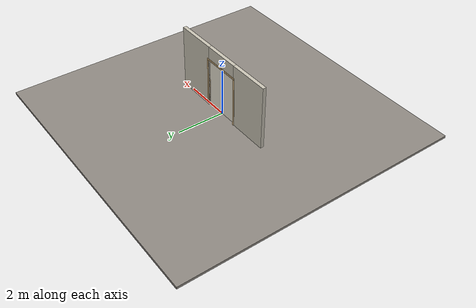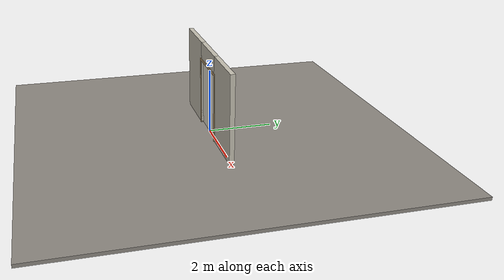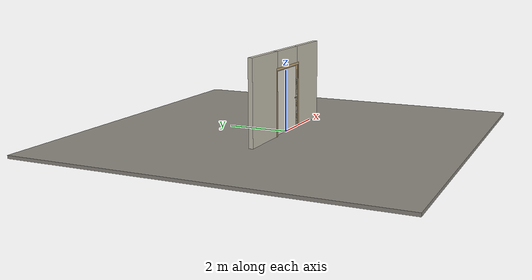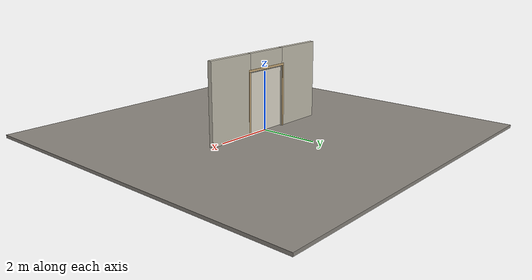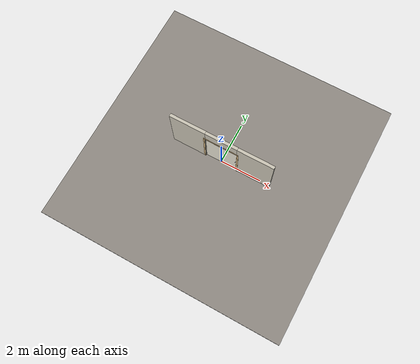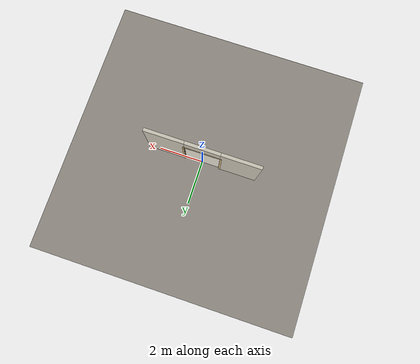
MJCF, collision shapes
<?xml version="1.0" ?>
<mujoco model="db0683_bifold_full">
  <compiler angle="radian" meshdir="../../hardware" texturedir="../../textures" autolimits="true" inertiafromgeom="false"/>
  <option timestep="0.002" integrator="implicitfast" cone="elliptic" impratio="10" noslip_iterations="3">
    <flag multiccd="enable"/>
  </option>
  <size memory="16M"/>
  <default>
    <geom condim="4" solref="0.005 1" solimp="0.95 0.99 0.001"/>
    <joint solreflimit="0.005 1" solimplimit="0.95 0.99 0.001"/>
    <tendon solreflimit="0.005 1"/>
    <equality solref="0.002 1"/>
  </default>
  <visual>
    <headlight ambient="0.4 0.4 0.4" diffuse="0.7 0.7 0.7" specular="0.2 0.2 0.2"/>
    <quality shadowsize="4096"/>
    <map znear="0.01" zfar="60"/>
  </visual>
  <asset>
    <mesh name="knob_13f7a2a65f" file="knob_13f7a2a65f.obj"/>
    <material name="mat_floor" rgba="0.55 0.53 0.5 1" specular="0.2" shininess="0.15" reflectance="0"/>
    <material name="mat_wall" rgba="0.78 0.76 0.7 1" specular="0.2" shininess="0.1" reflectance="0"/>
    <material name="mat_frame" rgba="0.82 0.7 0.5 1" specular="0.2" shininess="0.45" reflectance="0"/>
    <material name="mat_track" rgba="0.8 0.81 0.83 1" specular="0.8" shininess="0.6" reflectance="0.4"/>
    <material name="mat_hinge" rgba="0.65 0.66 0.68 1" specular="0.74" shininess="0.5" reflectance="0.36"/>
    <material name="mat_panel_0_0" rgba="0.9 0.88 0.82 1" specular="0.2" shininess="0.55" reflectance="0"/>
    <material name="mat_panel_0_0_louver" rgba="0.765 0.748 0.697 1" specular="0.2" shininess="0.4" reflectance="0"/>
    <material name="mat_panel_0_1" rgba="0.9 0.88 0.82 1" specular="0.2" shininess="0.55" reflectance="0"/>
    <material name="mat_panel_0_1_louver" rgba="0.765 0.748 0.697 1" specular="0.2" shininess="0.4" reflectance="0"/>
    <material name="mat_op_nickel_satin" rgba="0.72 0.7 0.66 1" specular="0.8" shininess="0.65" reflectance="0.4"/>
    <texture name="skybox" type="skybox" builtin="gradient" rgb1="0.6 0.7 0.85" rgb2="0.9 0.92 0.95" width="256" height="256"/>
  </asset>
  <worldbody>
    <light name="sun" pos="1.5 -2.5 4" dir="-0.3 0.5 -0.8" directional="true" diffuse="0.8 0.8 0.8" specular="0.3 0.3 0.3" castshadow="true"/>
    <light name="fill" pos="-1.5 2.5 3" dir="0.3 -0.5 -0.7" directional="true" diffuse="0.35 0.35 0.4" castshadow="false"/>
    <camera name="robot_view" pos="0 -2.581563 1.766338" xyaxes="1 0 0 0 0.26963 0.962964" fovy="52"/>
    <camera name="far_view" pos="0 2.581563 1.766338" xyaxes="-1 0 0 0 -0.26963 0.962964" fovy="52"/>
    <camera name="iso" pos="1.961988 -2.168513 2.179388" xyaxes="0.741536 0.670913 0 -0.242917 0.268487 0.932151" fovy="46"/>
    <camera name="detail_handle" pos="0.8935 -0.8475 1.28" xyaxes="0.97561 0.219512 0 -0.070934 0.315262 0.94635" fovy="38"/>
    <geom name="floor" type="box" size="6 6 0.05" pos="0 0 -0.05" material="mat_floor" group="0" contype="1" conaffinity="1" friction="0.8 0.005 0.0001" density="2400"/>
    <geom name="wall_left" type="box" size="0.86525 0.0725 1.35" pos="-1.63475 0 1.35" material="mat_wall" group="0" contype="1" conaffinity="1" friction="0.6 0.005 0.0001" density="800"/>
    <geom name="wall_right" type="box" size="0.86525 0.0725 1.35" pos="1.63475 0 1.35" material="mat_wall" group="0" contype="1" conaffinity="1" friction="0.6 0.005 0.0001" density="800"/>
    <geom name="wall_header" type="box" size="0.7695 0.0725 0.3065" pos="0 0 2.3935" material="mat_wall" group="0" contype="1" conaffinity="1" friction="0.6 0.005 0.0001" density="800"/>
    <geom name="jamb_hinge" type="box" size="0.0095 0.0725 1.0435" pos="-0.779 0 1.0435" material="mat_frame" group="0" contype="1" conaffinity="1" friction="0.6 0.005 0.0001" density="400"/>
    <geom name="jamb_strike" type="box" size="0.0095 0.0725 1.0435" pos="0.779 0 1.0435" material="mat_frame" group="0" contype="1" conaffinity="1" friction="0.6 0.005 0.0001" density="400"/>
    <geom name="stud_strike" type="box" size="0.015 0.0725 1.0435" pos="0.8035 0 1.0435" material="mat_wall" group="0" contype="1" conaffinity="1" friction="0.6 0.005 0.0001" density="500"/>
    <geom name="jamb_head" type="box" size="0.8035 0.0725 0.0095" pos="0.015 0 2.0965" material="mat_frame" group="0" contype="1" conaffinity="1" friction="0.6 0.005 0.0001" density="400"/>
    <geom name="head_stud" type="box" size="0.8035 0.0725 0.015" pos="0.015 0 2.121" material="mat_wall" group="0" contype="1" conaffinity="1" friction="0.6 0.005 0.0001" density="500"/>
    <geom name="casing_l_n" type="box" size="0.035 0.008 1.053" pos="-0.8185 -0.0805 1.0435" material="mat_frame" group="2" contype="0" conaffinity="0" density="400"/>
    <geom name="casing_r_n" type="box" size="0.035 0.008 1.053" pos="0.8185 -0.0805 1.0435" material="mat_frame" group="2" contype="0" conaffinity="0" density="400"/>
    <geom name="casing_h_n" type="box" size="0.8535 0.008 0.035" pos="0 -0.0805 2.136" material="mat_frame" group="2" contype="0" conaffinity="0" density="400"/>
    <geom name="casing_l_p" type="box" size="0.035 0.008 1.053" pos="-0.8185 0.0805 1.0435" material="mat_frame" group="2" contype="0" conaffinity="0" density="400"/>
    <geom name="casing_r_p" type="box" size="0.035 0.008 1.053" pos="0.8185 0.0805 1.0435" material="mat_frame" group="2" contype="0" conaffinity="0" density="400"/>
    <geom name="casing_h_p" type="box" size="0.8535 0.008 0.035" pos="0 0.0805 2.136" material="mat_frame" group="2" contype="0" conaffinity="0" density="400"/>
    <geom name="fold_track" type="box" size="0.7695 0.02 0.015" pos="0 0 2.072" material="mat_track" group="1" contype="0" conaffinity="0" density="2700"/>
    <site name="approach_point" pos="0 -1.5 0" quat="1 0 0 0" size="0.05" rgba="0.2 0.9 0.2 0.5" group="4"/>
    <site name="goal_point" pos="0 1.5 0" quat="1 0 0 0" size="0.05" rgba="0.2 0.9 0.2 0.5" group="4"/>
    <site name="door_plane_center" pos="0 0 1.0435" quat="1 0 0 0" size="0.02" rgba="0.2 0.9 0.2 0.5" group="4"/>
    <body name="panel_0_0" pos="-0.7695 0 0">
      <inertial pos="0.383386 0 1.038838" mass="11.876612" quat="0.500821 0.500821 0.499178 -0.499178" diaginertia="0.562183094 4.110008557 4.669772712"/>
      <joint name="panel_0_0_hinge" type="hinge" axis="0 0 -1" pos="0.035 0 0" limited="true" range="0 1.48353" damping="0.840751" frictionloss="11.149303" armature="0.02"/>
      <geom name="panel_0_0_slab" type="box" size="0.375645 0.0175 1.016" pos="0.384355 0 1.036" material="mat_panel_0_0" group="0" contype="1" conaffinity="1" friction="0.35 0.005 0.0001" density="1"/>
      <geom name="panel_0_0_louver_0" type="box" size="0.285645 0.002 0.026356" pos="0.384355 0 0.268621" quat="0.953717 0.300706 0 0" material="mat_panel_0_0_louver" group="1" contype="0" conaffinity="0" density="1"/>
      <geom name="panel_0_0_louver_1" type="box" size="0.285645 0.002 0.026356" pos="0.384355 0 0.318824" quat="0.953717 0.300706 0 0" material="mat_panel_0_0_louver" group="1" contype="0" conaffinity="0" density="1"/>
      <geom name="panel_0_0_louver_2" type="box" size="0.285645 0.002 0.026356" pos="0.384355 0 0.369026" quat="0.953717 0.300706 0 0" material="mat_panel_0_0_louver" group="1" contype="0" conaffinity="0" density="1"/>
      <geom name="panel_0_0_louver_3" type="box" size="0.285645 0.002 0.026356" pos="0.384355 0 0.419228" quat="0.953717 0.300706 0 0" material="mat_panel_0_0_louver" group="1" contype="0" conaffinity="0" density="1"/>
      <geom name="panel_0_0_louver_4" type="box" size="0.285645 0.002 0.026356" pos="0.384355 0 0.469431" quat="0.953717 0.300706 0 0" material="mat_panel_0_0_louver" group="1" contype="0" conaffinity="0" density="1"/>
      <geom name="panel_0_0_louver_5" type="box" size="0.285645 0.002 0.026356" pos="0.384355 0 0.519633" quat="0.953717 0.300706 0 0" material="mat_panel_0_0_louver" group="1" contype="0" conaffinity="0" density="1"/>
      <geom name="panel_0_0_louver_6" type="box" size="0.285645 0.002 0.026356" pos="0.384355 0 0.569835" quat="0.953717 0.300706 0 0" material="mat_panel_0_0_louver" group="1" contype="0" conaffinity="0" density="1"/>
      <geom name="panel_0_0_louver_7" type="box" size="0.285645 0.002 0.026356" pos="0.384355 0 0.620038" quat="0.953717 0.300706 0 0" material="mat_panel_0_0_louver" group="1" contype="0" conaffinity="0" density="1"/>
      <geom name="panel_0_0_louver_8" type="box" size="0.285645 0.002 0.026356" pos="0.384355 0 0.67024" quat="0.953717 0.300706 0 0" material="mat_panel_0_0_louver" group="1" contype="0" conaffinity="0" density="1"/>
      <geom name="panel_0_0_louver_9" type="box" size="0.285645 0.002 0.026356" pos="0.384355 0 0.720442" quat="0.953717 0.300706 0 0" material="mat_panel_0_0_louver" group="1" contype="0" conaffinity="0" density="1"/>
      <geom name="panel_0_0_louver_10" type="box" size="0.285645 0.002 0.026356" pos="0.384355 0 0.770645" quat="0.953717 0.300706 0 0" material="mat_panel_0_0_louver" group="1" contype="0" conaffinity="0" density="1"/>
      <geom name="panel_0_0_louver_11" type="box" size="0.285645 0.002 0.026356" pos="0.384355 0 0.820847" quat="0.953717 0.300706 0 0" material="mat_panel_0_0_louver" group="1" contype="0" conaffinity="0" density="1"/>
      <geom name="panel_0_0_louver_12" type="box" size="0.285645 0.002 0.026356" pos="0.384355 0 0.871049" quat="0.953717 0.300706 0 0" material="mat_panel_0_0_louver" group="1" contype="0" conaffinity="0" density="1"/>
      <geom name="panel_0_0_louver_13" type="box" size="0.285645 0.002 0.026356" pos="0.384355 0 0.921252" quat="0.953717 0.300706 0 0" material="mat_panel_0_0_louver" group="1" contype="0" conaffinity="0" density="1"/>
      <geom name="panel_0_0_louver_14" type="box" size="0.285645 0.002 0.026356" pos="0.384355 0 0.971454" quat="0.953717 0.300706 0 0" material="mat_panel_0_0_louver" group="1" contype="0" conaffinity="0" density="1"/>
      <geom name="panel_0_0_louver_15" type="box" size="0.285645 0.002 0.026356" pos="0.384355 0 1.021656" quat="0.953717 0.300706 0 0" material="mat_panel_0_0_louver" group="1" contype="0" conaffinity="0" density="1"/>
      <geom name="panel_0_0_louver_16" type="box" size="0.285645 0.002 0.026356" pos="0.384355 0 1.071859" quat="0.953717 0.300706 0 0" material="mat_panel_0_0_louver" group="1" contype="0" conaffinity="0" density="1"/>
      <geom name="panel_0_0_louver_17" type="box" size="0.285645 0.002 0.026356" pos="0.384355 0 1.122061" quat="0.953717 0.300706 0 0" material="mat_panel_0_0_louver" group="1" contype="0" conaffinity="0" density="1"/>
      <geom name="panel_0_0_louver_18" type="box" size="0.285645 0.002 0.026356" pos="0.384355 0 1.172264" quat="0.953717 0.300706 0 0" material="mat_panel_0_0_louver" group="1" contype="0" conaffinity="0" density="1"/>
      <geom name="panel_0_0_louver_19" type="box" size="0.285645 0.002 0.026356" pos="0.384355 0 1.222466" quat="0.953717 0.300706 0 0" material="mat_panel_0_0_louver" group="1" contype="0" conaffinity="0" density="1"/>
      <geom name="panel_0_0_louver_20" type="box" size="0.285645 0.002 0.026356" pos="0.384355 0 1.272668" quat="0.953717 0.300706 0 0" material="mat_panel_0_0_louver" group="1" contype="0" conaffinity="0" density="1"/>
      <geom name="panel_0_0_louver_21" type="box" size="0.285645 0.002 0.026356" pos="0.384355 0 1.322871" quat="0.953717 0.300706 0 0" material="mat_panel_0_0_louver" group="1" contype="0" conaffinity="0" density="1"/>
      <geom name="panel_0_0_louver_22" type="box" size="0.285645 0.002 0.026356" pos="0.384355 0 1.373073" quat="0.953717 0.300706 0 0" material="mat_panel_0_0_louver" group="1" contype="0" conaffinity="0" density="1"/>
      <geom name="panel_0_0_louver_23" type="box" size="0.285645 0.002 0.026356" pos="0.384355 0 1.423275" quat="0.953717 0.300706 0 0" material="mat_panel_0_0_louver" group="1" contype="0" conaffinity="0" density="1"/>
      <geom name="panel_0_0_louver_24" type="box" size="0.285645 0.002 0.026356" pos="0.384355 0 1.473478" quat="0.953717 0.300706 0 0" material="mat_panel_0_0_louver" group="1" contype="0" conaffinity="0" density="1"/>
      <geom name="panel_0_0_louver_25" type="box" size="0.285645 0.002 0.026356" pos="0.384355 0 1.52368" quat="0.953717 0.300706 0 0" material="mat_panel_0_0_louver" group="1" contype="0" conaffinity="0" density="1"/>
      <geom name="panel_0_0_louver_26" type="box" size="0.285645 0.002 0.026356" pos="0.384355 0 1.573882" quat="0.953717 0.300706 0 0" material="mat_panel_0_0_louver" group="1" contype="0" conaffinity="0" density="1"/>
      <geom name="panel_0_0_louver_27" type="box" size="0.285645 0.002 0.026356" pos="0.384355 0 1.624085" quat="0.953717 0.300706 0 0" material="mat_panel_0_0_louver" group="1" contype="0" conaffinity="0" density="1"/>
      <geom name="panel_0_0_louver_28" type="box" size="0.285645 0.002 0.026356" pos="0.384355 0 1.674287" quat="0.953717 0.300706 0 0" material="mat_panel_0_0_louver" group="1" contype="0" conaffinity="0" density="1"/>
      <geom name="panel_0_0_louver_29" type="box" size="0.285645 0.002 0.026356" pos="0.384355 0 1.724489" quat="0.953717 0.300706 0 0" material="mat_panel_0_0_louver" group="1" contype="0" conaffinity="0" density="1"/>
      <geom name="panel_0_0_louver_30" type="box" size="0.285645 0.002 0.026356" pos="0.384355 0 1.774692" quat="0.953717 0.300706 0 0" material="mat_panel_0_0_louver" group="1" contype="0" conaffinity="0" density="1"/>
      <geom name="panel_0_0_louver_31" type="box" size="0.285645 0.002 0.026356" pos="0.384355 0 1.824894" quat="0.953717 0.300706 0 0" material="mat_panel_0_0_louver" group="1" contype="0" conaffinity="0" density="1"/>
      <geom name="panel_0_0_louver_32" type="box" size="0.285645 0.002 0.026356" pos="0.384355 0 1.875096" quat="0.953717 0.300706 0 0" material="mat_panel_0_0_louver" group="1" contype="0" conaffinity="0" density="1"/>
      <geom name="panel_0_0_louver_33" type="box" size="0.285645 0.002 0.026356" pos="0.384355 0 1.925299" quat="0.953717 0.300706 0 0" material="mat_panel_0_0_louver" group="1" contype="0" conaffinity="0" density="1"/>
      <geom name="panel_0_0_pivot_pin" type="cylinder" size="0.008 0.0105" pos="0.035 0 2.0525" material="mat_hinge" group="1" contype="0" conaffinity="0" density="7850"/>
      <body name="panel_0_1" pos="0.762 0 0">
        <inertial pos="0.106441 0.010155 1.031837" mass="12.198501" quat="0.514184 0.479597 -0.519573 0.485433" diaginertia="0.753475006 3.617469979 4.369897822"/>
        <joint name="panel_0_1_hinge" type="hinge" axis="0 0 -1" pos="0 0.0175 0" limited="true" range="-3.141593 0" damping="0.2" frictionloss="0.1" armature="0.005"/>
        <geom name="panel_0_1_slab" type="box" size="0.3845 0.0175 1.016" pos="0.3865 0 1.036" material="mat_panel_0_1" group="0" contype="1" conaffinity="1" friction="0.35 0.005 0.0001" density="1"/>
        <geom name="panel_0_1_louver_0" type="box" size="0.2945 0.002 0.026356" pos="0.3865 0 0.268621" quat="0.953717 0.300706 0 0" material="mat_panel_0_1_louver" group="1" contype="0" conaffinity="0" density="1"/>
        <geom name="panel_0_1_louver_1" type="box" size="0.2945 0.002 0.026356" pos="0.3865 0 0.318824" quat="0.953717 0.300706 0 0" material="mat_panel_0_1_louver" group="1" contype="0" conaffinity="0" density="1"/>
        <geom name="panel_0_1_louver_2" type="box" size="0.2945 0.002 0.026356" pos="0.3865 0 0.369026" quat="0.953717 0.300706 0 0" material="mat_panel_0_1_louver" group="1" contype="0" conaffinity="0" density="1"/>
        <geom name="panel_0_1_louver_3" type="box" size="0.2945 0.002 0.026356" pos="0.3865 0 0.419228" quat="0.953717 0.300706 0 0" material="mat_panel_0_1_louver" group="1" contype="0" conaffinity="0" density="1"/>
        <geom name="panel_0_1_louver_4" type="box" size="0.2945 0.002 0.026356" pos="0.3865 0 0.469431" quat="0.953717 0.300706 0 0" material="mat_panel_0_1_louver" group="1" contype="0" conaffinity="0" density="1"/>
        <geom name="panel_0_1_louver_5" type="box" size="0.2945 0.002 0.026356" pos="0.3865 0 0.519633" quat="0.953717 0.300706 0 0" material="mat_panel_0_1_louver" group="1" contype="0" conaffinity="0" density="1"/>
        <geom name="panel_0_1_louver_6" type="box" size="0.2945 0.002 0.026356" pos="0.3865 0 0.569835" quat="0.953717 0.300706 0 0" material="mat_panel_0_1_louver" group="1" contype="0" conaffinity="0" density="1"/>
        <geom name="panel_0_1_louver_7" type="box" size="0.2945 0.002 0.026356" pos="0.3865 0 0.620038" quat="0.953717 0.300706 0 0" material="mat_panel_0_1_louver" group="1" contype="0" conaffinity="0" density="1"/>
        <geom name="panel_0_1_louver_8" type="box" size="0.2945 0.002 0.026356" pos="0.3865 0 0.67024" quat="0.953717 0.300706 0 0" material="mat_panel_0_1_louver" group="1" contype="0" conaffinity="0" density="1"/>
        <geom name="panel_0_1_louver_9" type="box" size="0.2945 0.002 0.026356" pos="0.3865 0 0.720442" quat="0.953717 0.300706 0 0" material="mat_panel_0_1_louver" group="1" contype="0" conaffinity="0" density="1"/>
        <geom name="panel_0_1_louver_10" type="box" size="0.2945 0.002 0.026356" pos="0.3865 0 0.770645" quat="0.953717 0.300706 0 0" material="mat_panel_0_1_louver" group="1" contype="0" conaffinity="0" density="1"/>
        <geom name="panel_0_1_louver_11" type="box" size="0.2945 0.002 0.026356" pos="0.3865 0 0.820847" quat="0.953717 0.300706 0 0" material="mat_panel_0_1_louver" group="1" contype="0" conaffinity="0" density="1"/>
        <geom name="panel_0_1_louver_12" type="box" size="0.2945 0.002 0.026356" pos="0.3865 0 0.871049" quat="0.953717 0.300706 0 0" material="mat_panel_0_1_louver" group="1" contype="0" conaffinity="0" density="1"/>
        <geom name="panel_0_1_louver_13" type="box" size="0.2945 0.002 0.026356" pos="0.3865 0 0.921252" quat="0.953717 0.300706 0 0" material="mat_panel_0_1_louver" group="1" contype="0" conaffinity="0" density="1"/>
        <geom name="panel_0_1_louver_14" type="box" size="0.2945 0.002 0.026356" pos="0.3865 0 0.971454" quat="0.953717 0.300706 0 0" material="mat_panel_0_1_louver" group="1" contype="0" conaffinity="0" density="1"/>
        <geom name="panel_0_1_louver_15" type="box" size="0.2945 0.002 0.026356" pos="0.3865 0 1.021656" quat="0.953717 0.300706 0 0" material="mat_panel_0_1_louver" group="1" contype="0" conaffinity="0" density="1"/>
        <geom name="panel_0_1_louver_16" type="box" size="0.2945 0.002 0.026356" pos="0.3865 0 1.071859" quat="0.953717 0.300706 0 0" material="mat_panel_0_1_louver" group="1" contype="0" conaffinity="0" density="1"/>
        <geom name="panel_0_1_louver_17" type="box" size="0.2945 0.002 0.026356" pos="0.3865 0 1.122061" quat="0.953717 0.300706 0 0" material="mat_panel_0_1_louver" group="1" contype="0" conaffinity="0" density="1"/>
        <geom name="panel_0_1_louver_18" type="box" size="0.2945 0.002 0.026356" pos="0.3865 0 1.172264" quat="0.953717 0.300706 0 0" material="mat_panel_0_1_louver" group="1" contype="0" conaffinity="0" density="1"/>
        <geom name="panel_0_1_louver_19" type="box" size="0.2945 0.002 0.026356" pos="0.3865 0 1.222466" quat="0.953717 0.300706 0 0" material="mat_panel_0_1_louver" group="1" contype="0" conaffinity="0" density="1"/>
        <geom name="panel_0_1_louver_20" type="box" size="0.2945 0.002 0.026356" pos="0.3865 0 1.272668" quat="0.953717 0.300706 0 0" material="mat_panel_0_1_louver" group="1" contype="0" conaffinity="0" density="1"/>
        <geom name="panel_0_1_louver_21" type="box" size="0.2945 0.002 0.026356" pos="0.3865 0 1.322871" quat="0.953717 0.300706 0 0" material="mat_panel_0_1_louver" group="1" contype="0" conaffinity="0" density="1"/>
        <geom name="panel_0_1_louver_22" type="box" size="0.2945 0.002 0.026356" pos="0.3865 0 1.373073" quat="0.953717 0.300706 0 0" material="mat_panel_0_1_louver" group="1" contype="0" conaffinity="0" density="1"/>
        <geom name="panel_0_1_louver_23" type="box" size="0.2945 0.002 0.026356" pos="0.3865 0 1.423275" quat="0.953717 0.300706 0 0" material="mat_panel_0_1_louver" group="1" contype="0" conaffinity="0" density="1"/>
        <geom name="panel_0_1_louver_24" type="box" size="0.2945 0.002 0.026356" pos="0.3865 0 1.473478" quat="0.953717 0.300706 0 0" material="mat_panel_0_1_louver" group="1" contype="0" conaffinity="0" density="1"/>
        <geom name="panel_0_1_louver_25" type="box" size="0.2945 0.002 0.026356" pos="0.3865 0 1.52368" quat="0.953717 0.300706 0 0" material="mat_panel_0_1_louver" group="1" contype="0" conaffinity="0" density="1"/>
        <geom name="panel_0_1_louver_26" type="box" size="0.2945 0.002 0.026356" pos="0.3865 0 1.573882" quat="0.953717 0.300706 0 0" material="mat_panel_0_1_louver" group="1" contype="0" conaffinity="0" density="1"/>
        <geom name="panel_0_1_louver_27" type="box" size="0.2945 0.002 0.026356" pos="0.3865 0 1.624085" quat="0.953717 0.300706 0 0" material="mat_panel_0_1_louver" group="1" contype="0" conaffinity="0" density="1"/>
        <geom name="panel_0_1_louver_28" type="box" size="0.2945 0.002 0.026356" pos="0.3865 0 1.674287" quat="0.953717 0.300706 0 0" material="mat_panel_0_1_louver" group="1" contype="0" conaffinity="0" density="1"/>
        <geom name="panel_0_1_louver_29" type="box" size="0.2945 0.002 0.026356" pos="0.3865 0 1.724489" quat="0.953717 0.300706 0 0" material="mat_panel_0_1_louver" group="1" contype="0" conaffinity="0" density="1"/>
        <geom name="panel_0_1_louver_30" type="box" size="0.2945 0.002 0.026356" pos="0.3865 0 1.774692" quat="0.953717 0.300706 0 0" material="mat_panel_0_1_louver" group="1" contype="0" conaffinity="0" density="1"/>
        <geom name="panel_0_1_louver_31" type="box" size="0.2945 0.002 0.026356" pos="0.3865 0 1.824894" quat="0.953717 0.300706 0 0" material="mat_panel_0_1_louver" group="1" contype="0" conaffinity="0" density="1"/>
        <geom name="panel_0_1_louver_32" type="box" size="0.2945 0.002 0.026356" pos="0.3865 0 1.875096" quat="0.953717 0.300706 0 0" material="mat_panel_0_1_louver" group="1" contype="0" conaffinity="0" density="1"/>
        <geom name="panel_0_1_louver_33" type="box" size="0.2945 0.002 0.026356" pos="0.3865 0 1.925299" quat="0.953717 0.300706 0 0" material="mat_panel_0_1_louver" group="1" contype="0" conaffinity="0" density="1"/>
        <geom name="panel_0_1_knuckle" type="cylinder" size="0.0045 1.006" pos="0 0.0175 1.036" material="mat_hinge" group="1" contype="0" conaffinity="0" density="7850"/>
        <geom name="panel_0_1_knob" type="mesh" mesh="knob_13f7a2a65f" pos="0.721 -0.0175 1" quat="0.707107 0.707107 0 0" material="mat_op_nickel_satin" group="1" contype="0" conaffinity="0" density="3000"/>
        <geom name="panel_0_1_knob_col" type="sphere" size="0.016" pos="0.721 -0.0475 1" material="mat_op_nickel_satin" group="0" contype="1" conaffinity="1" friction="0.6 0.005 0.0001" density="3000"/>
        <geom name="panel_0_1_knob_rose" type="cylinder" size="0.022 0.005" pos="0.721 -0.0225 1" quat="0.707107 -0.707107 0 0" material="mat_op_nickel_satin" group="1" contype="0" conaffinity="0" density="3000"/>
        <site name="panel_0_1_grip" pos="0.721 -0.0475 1" quat="1 0 0 0" size="0.012" rgba="0.2 0.9 0.2 0.5" group="4"/>
      </body>
    </body>
  </worldbody>
  <equality>
    <joint name="panel_0_1_couple" joint1="panel_0_1_hinge" joint2="panel_0_0_hinge" polycoef="0 -2 0 0 0" active="true"/>
  </equality>
  <sensor>
    <jointpos name="panel_0_0_hinge_pos" joint="panel_0_0_hinge"/>
    <jointvel name="panel_0_0_hinge_vel" joint="panel_0_0_hinge"/>
    <jointpos name="panel_0_1_hinge_pos" joint="panel_0_1_hinge"/>
    <jointvel name="panel_0_1_hinge_vel" joint="panel_0_1_hinge"/>
  </sensor>
</mujoco>
